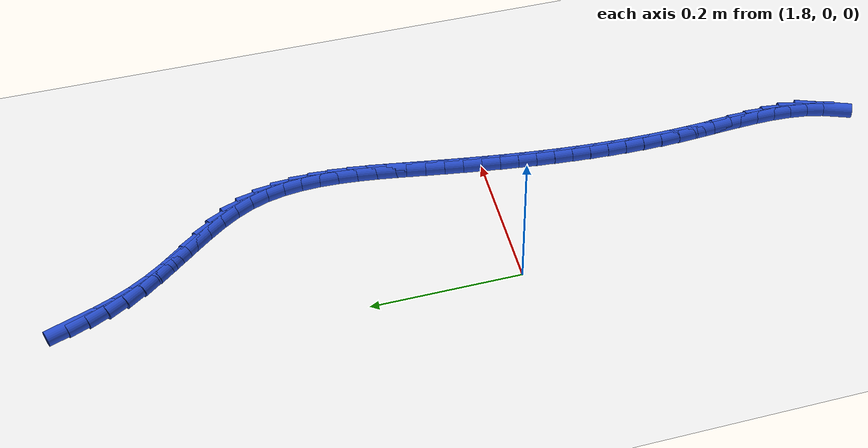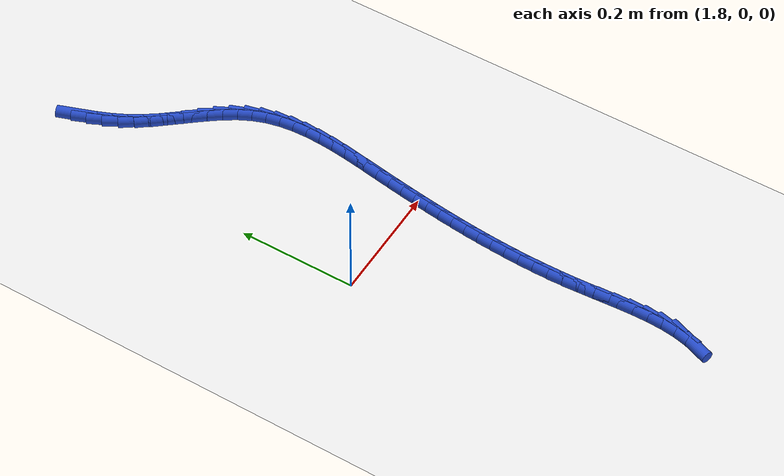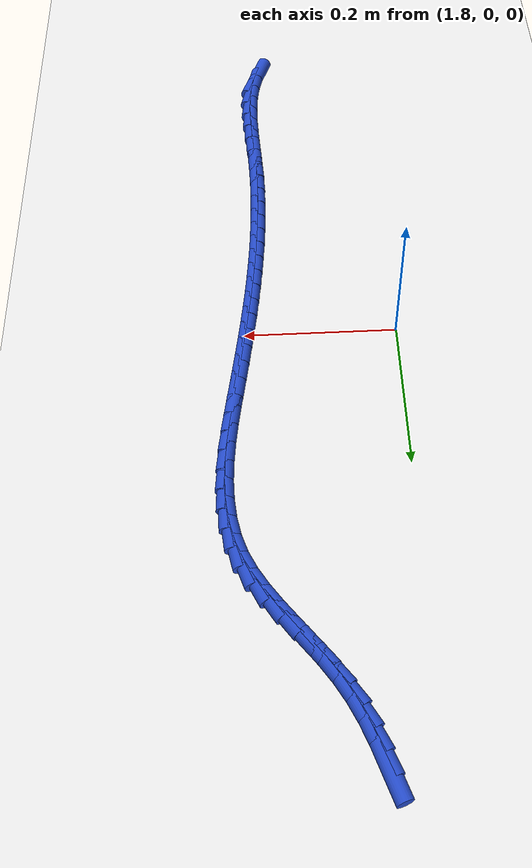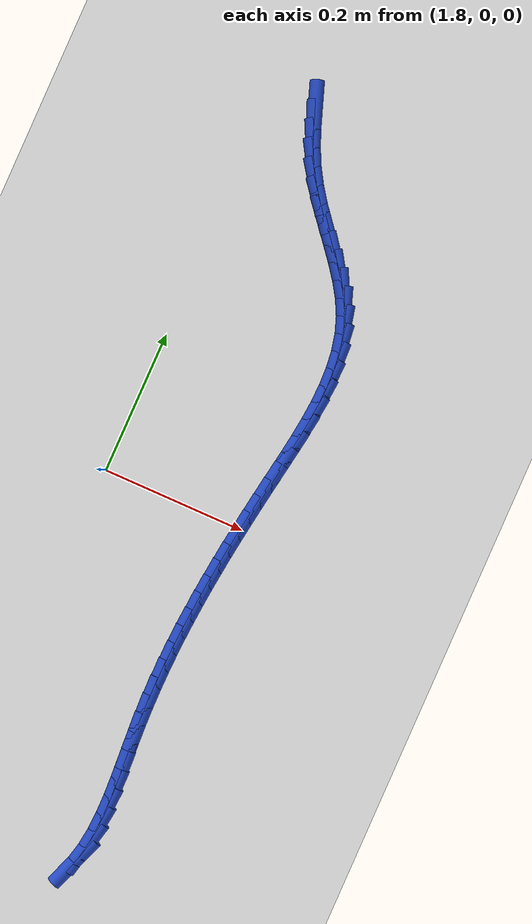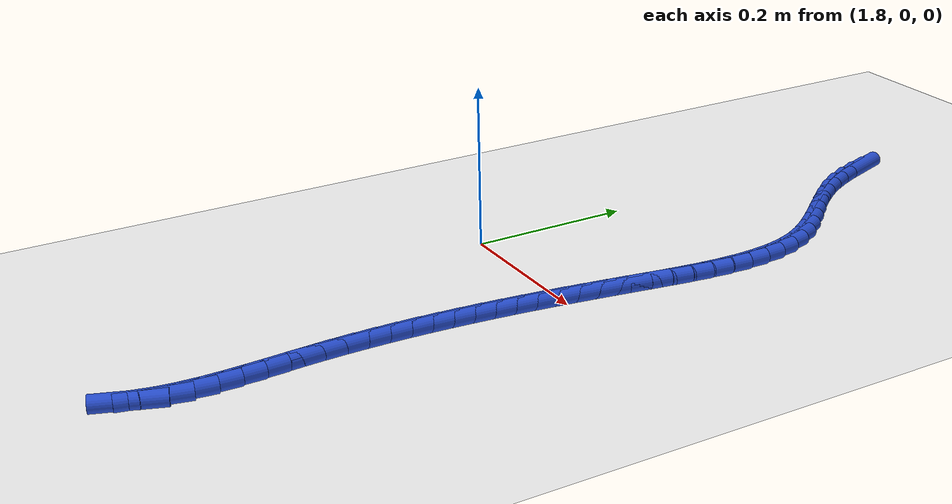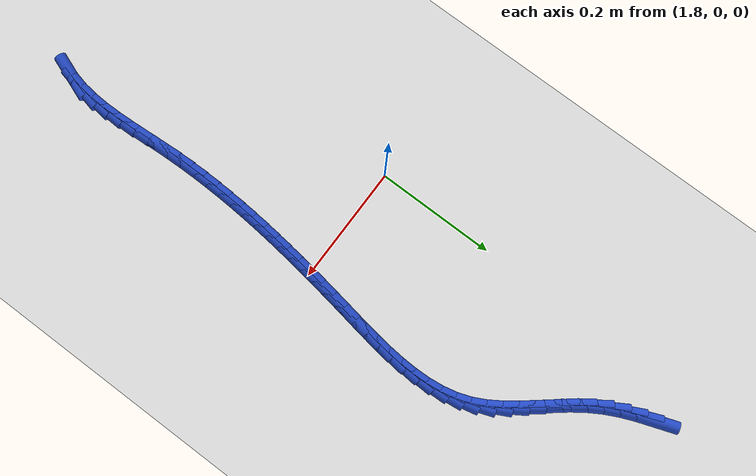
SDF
<sdf version="1.6">
 <world name="default">
  <model name="ground_plane">
   <static>1</static>
   <link name="link">
    <collision name="collision">
     <geometry><plane><normal>0 0 1</normal><size>100 100</size></plane></geometry>
     <surface><friction><ode><mu>100</mu><mu2>50</mu2></ode></friction></surface>
    </collision>
    <visual name="visual">
     <cast_shadows>0</cast_shadows>
     <geometry><plane><normal>0 0 1</normal><size>100 100</size></plane></geometry>
     <material>
      <script><uri>file://media/materials/scripts/gazebo.material</uri><name>Gazebo/WhiteGlow</name></script>
     </material>
    </visual>
   </link>
  </model>
  <model name="line">
   <link name="link_107">
    <pose>1.8610962574442174 0.5542852557770672 0.01 0 1.57 -1.2293249356853417</pose>
    <collision name="collision">
     <geometry><cylinder><radius>0.01</radius><length>0.08</length></cylinder></geometry>
    </collision>
    <visual name="visual">
     <material>
      <script><name>Gazebo/Blue</name><uri>file://media/materials/scripts/gazebo.material</uri></script>
     </material>
     <geometry><cylinder><radius>0.01</radius><length>0.08</length></cylinder></geometry>
    </visual>
   </link>
   <link name="link_108">
    <pose>1.8696359012854007 0.5302565385575835 0.01 0 1.57 -1.177512305773582</pose>
    <collision name="collision">
     <geometry><cylinder><radius>0.01</radius><length>0.08</length></cylinder></geometry>
    </collision>
    <visual name="visual">
     <material>
      <script><name>Gazebo/Blue</name><uri>file://media/materials/scripts/gazebo.material</uri></script>
     </material>
     <geometry><cylinder><radius>0.01</radius><length>0.08</length></cylinder></geometry>
    </visual>
   </link>
   <link name="link_109">
    <pose>1.8793738081867253 0.5067859921014853 0.01 0 1.57 -1.109574946873668</pose>
    <collision name="collision">
     <geometry><cylinder><radius>0.01</radius><length>0.08</length></cylinder></geometry>
    </collision>
    <visual name="visual">
     <material>
      <script><name>Gazebo/Blue</name><uri>file://media/materials/scripts/gazebo.material</uri></script>
     </material>
     <geometry><cylinder><radius>0.01</radius><length>0.08</length></cylinder></geometry>
    </visual>
   </link>
   <link name="link_110">
    <pose>1.8906725779312867 0.4840507169670536 0.01 0 1.57 -1.0266306603056614</pose>
    <collision name="collision">
     <geometry><cylinder><radius>0.01</radius><length>0.08</length></cylinder></geometry>
    </collision>
    <visual name="visual">
     <material>
      <script><name>Gazebo/Blue</name><uri>file://media/materials/scripts/gazebo.material</uri></script>
     </material>
     <geometry><cylinder><radius>0.01</radius><length>0.08</length></cylinder></geometry>
    </visual>
   </link>
   <link name="link_111">
    <pose>1.903881331934188 0.4622219006431325 0.01 0 1.57 -0.9492755823621613</pose>
    <collision name="collision">
     <geometry><cylinder><radius>0.01</radius><length>0.08</length></cylinder></geometry>
    </collision>
    <visual name="visual">
     <material>
      <script><name>Gazebo/Blue</name><uri>file://media/materials/scripts/gazebo.material</uri></script>
     </material>
     <geometry><cylinder><radius>0.01</radius><length>0.08</length></cylinder></geometry>
    </visual>
   </link>
   <link name="link_112">
    <pose>1.9188882898765236 0.441268529286868 0.01 0 1.57 -0.9007615337390162</pose>
    <collision name="collision">
     <geometry><cylinder><radius>0.01</radius><length>0.08</length></cylinder></geometry>
    </collision>
    <visual name="visual">
     <material>
      <script><name>Gazebo/Blue</name><uri>file://media/materials/scripts/gazebo.material</uri></script>
     </material>
     <geometry><cylinder><radius>0.01</radius><length>0.08</length></cylinder></geometry>
    </visual>
   </link>
   <link name="link_113">
    <pose>1.9350170716073867 0.42091189452643635 0.01 0 1.57 -0.8811325712753304</pose>
    <collision name="collision">
     <geometry><cylinder><radius>0.01</radius><length>0.08</length></cylinder></geometry>
    </collision>
    <visual name="visual">
     <material>
      <script><name>Gazebo/Blue</name><uri>file://media/materials/scripts/gazebo.material</uri></script>
     </material>
     <geometry><cylinder><radius>0.01</radius><length>0.08</length></cylinder></geometry>
    </visual>
   </link>
   <link name="link_114">
    <pose>1.9515568108831154 0.4008581586612102 0.01 0 1.57 -0.8898777325078531</pose>
    <collision name="collision">
     <geometry><cylinder><radius>0.01</radius><length>0.08</length></cylinder></geometry>
    </collision>
    <visual name="visual">
     <material>
      <script><name>Gazebo/Blue</name><uri>file://media/materials/scripts/gazebo.material</uri></script>
     </material>
     <geometry><cylinder><radius>0.01</radius><length>0.08</length></cylinder></geometry>
    </visual>
   </link>
   <link name="link_115">
    <pose>1.9677966414600472 0.3808134839905617 0.01 0 1.57 -0.9278631562762352</pose>
    <collision name="collision">
     <geometry><cylinder><radius>0.01</radius><length>0.08</length></cylinder></geometry>
    </collision>
    <visual name="visual">
     <material>
      <script><name>Gazebo/Blue</name><uri>file://media/materials/scripts/gazebo.material</uri></script>
     </material>
     <geometry><cylinder><radius>0.01</radius><length>0.08</length></cylinder></geometry>
    </visual>
   </link>
   <link name="link_116">
    <pose>1.9830256970945204 0.36048403281386404 0.01 0 1.57 -0.9972110603066092</pose>
    <collision name="collision">
     <geometry><cylinder><radius>0.01</radius><length>0.08</length></cylinder></geometry>
    </collision>
    <visual name="visual">
     <material>
      <script><name>Gazebo/Blue</name><uri>file://media/materials/scripts/gazebo.material</uri></script>
     </material>
     <geometry><cylinder><radius>0.01</radius><length>0.08</length></cylinder></geometry>
    </visual>
   </link>
   <link name="link_117">
    <pose>1.996533111542873 0.3395759674304895 0.01 0 1.57 -1.100389580745206</pose>
    <collision name="collision">
     <geometry><cylinder><radius>0.01</radius><length>0.08</length></cylinder></geometry>
    </collision>
    <visual name="visual">
     <material>
      <script><name>Gazebo/Blue</name><uri>file://media/materials/scripts/gazebo.material</uri></script>
     </material>
     <geometry><cylinder><radius>0.01</radius><length>0.08</length></cylinder></geometry>
    </visual>
   </link>
   <link name="link_118">
    <pose>2.0076080188476797 0.31779545026214256 0.01 0 1.57 -1.2298100016684865</pose>
    <collision name="collision">
     <geometry><cylinder><radius>0.01</radius><length>0.08</length></cylinder></geometry>
    </collision>
    <visual name="visual">
     <material>
      <script><name>Gazebo/Blue</name><uri>file://media/materials/scripts/gazebo.material</uri></script>
     </material>
     <geometry><cylinder><radius>0.01</radius><length>0.08</length></cylinder></geometry>
    </visual>
   </link>
   <link name="link_119">
    <pose>2.0157228296688134 0.294926972850751 0.01 0 1.57 -1.3509083829112822</pose>
    <collision name="collision">
     <geometry><cylinder><radius>0.01</radius><length>0.08</length></cylinder></geometry>
    </collision>
    <visual name="visual">
     <material>
      <script><name>Gazebo/Blue</name><uri>file://media/materials/scripts/gazebo.material</uri></script>
     </material>
     <geometry><cylinder><radius>0.01</radius><length>0.08</length></cylinder></geometry>
    </visual>
   </link>
   <link name="link_120">
    <pose>2.0210576981846926 0.2710575035515282 0.01 0 1.57 -1.4537364040141276</pose>
    <collision name="collision">
     <geometry><cylinder><radius>0.01</radius><length>0.08</length></cylinder></geometry>
    </collision>
    <visual name="visual">
     <material>
      <script><name>Gazebo/Blue</name><uri>file://media/materials/scripts/gazebo.material</uri></script>
     </material>
     <geometry><cylinder><radius>0.01</radius><length>0.08</length></cylinder></geometry>
    </visual>
   </link>
   <link name="link_121">
    <pose>2.0239635916041685 0.24634701312770677 0.01 0 1.57 -1.538203095894344</pose>
    <collision name="collision">
     <geometry><cylinder><radius>0.01</radius><length>0.08</length></cylinder></geometry>
    </collision>
    <visual name="visual">
     <material>
      <script><name>Gazebo/Blue</name><uri>file://media/materials/scripts/gazebo.material</uri></script>
     </material>
     <geometry><cylinder><radius>0.01</radius><length>0.08</length></cylinder></geometry>
    </visual>
   </link>
   <link name="link_122">
    <pose>2.0247914771360924 0.22095547234251928 0.01 0 1.57 1.5361107366724638</pose>
    <collision name="collision">
     <geometry><cylinder><radius>0.01</radius><length>0.08</length></cylinder></geometry>
    </collision>
    <visual name="visual">
     <material>
      <script><name>Gazebo/Blue</name><uri>file://media/materials/scripts/gazebo.material</uri></script>
     </material>
     <geometry><cylinder><radius>0.01</radius><length>0.08</length></cylinder></geometry>
    </visual>
   </link>
   <link name="link_123">
    <pose>2.0238923219893166 0.19504285195919785 0.01 0 1.57 1.484414728843293</pose>
    <collision name="collision">
     <geometry><cylinder><radius>0.01</radius><length>0.08</length></cylinder></geometry>
    </collision>
    <visual name="visual">
     <material>
      <script><name>Gazebo/Blue</name><uri>file://media/materials/scripts/gazebo.material</uri></script>
     </material>
     <geometry><cylinder><radius>0.01</radius><length>0.08</length></cylinder></geometry>
    </visual>
   </link>
   <link name="link_124">
    <pose>2.021617093372692 0.16876912274097586 0.01 0 1.57 1.4467769366652745</pose>
    <collision name="collision">
     <geometry><cylinder><radius>0.01</radius><length>0.08</length></cylinder></geometry>
    </collision>
    <visual name="visual">
     <material>
      <script><name>Gazebo/Blue</name><uri>file://media/materials/scripts/gazebo.material</uri></script>
     </material>
     <geometry><cylinder><radius>0.01</radius><length>0.08</length></cylinder></geometry>
    </visual>
   </link>
   <link name="link_125">
    <pose>2.0183167584950703 0.14229425545108546 0.01 0 1.57 1.4220144950651614</pose>
    <collision name="collision">
     <geometry><cylinder><radius>0.01</radius><length>0.08</length></cylinder></geometry>
    </collision>
    <visual name="visual">
     <material>
      <script><name>Gazebo/Blue</name><uri>file://media/materials/scripts/gazebo.material</uri></script>
     </material>
     <geometry><cylinder><radius>0.01</radius><length>0.08</length></cylinder></geometry>
    </visual>
   </link>
   <link name="link_126">
    <pose>2.014342284565303 0.11577822085275881 0.01 0 1.57 1.4094056389707181</pose>
    <collision name="collision">
     <geometry><cylinder><radius>0.01</radius><length>0.08</length></cylinder></geometry>
    </collision>
    <visual name="visual">
     <material>
      <script><name>Gazebo/Blue</name><uri>file://media/materials/scripts/gazebo.material</uri></script>
     </material>
     <geometry><cylinder><radius>0.01</radius><length>0.08</length></cylinder></geometry>
    </visual>
   </link>
   <link name="link_127">
    <pose>2.010044638792242 0.08938098970922927 0.01 0 1.57 1.4084013049644941</pose>
    <collision name="collision">
     <geometry><cylinder><radius>0.01</radius><length>0.08</length></cylinder></geometry>
    </collision>
    <visual name="visual">
     <material>
      <script><name>Gazebo/Blue</name><uri>file://media/materials/scripts/gazebo.material</uri></script>
     </material>
     <geometry><cylinder><radius>0.01</radius><length>0.08</length></cylinder></geometry>
    </visual>
   </link>
   <link name="link_128">
    <pose>2.0057643613279277 0.06325590040431141 0.01 0 1.57 1.4134990775991132</pose>
    <collision name="collision">
     <geometry><cylinder><radius>0.01</radius><length>0.08</length></cylinder></geometry>
    </collision>
    <visual name="visual">
     <material>
      <script><name>Gazebo/Blue</name><uri>file://media/materials/scripts/gazebo.material</uri></script>
     </material>
     <geometry><cylinder><radius>0.01</radius><length>0.08</length></cylinder></geometry>
    </visual>
   </link>
   <link name="link_129">
    <pose>2.001670954647219 0.03744749870753733 0.01 0 1.57 1.4201292096819973</pose>
    <collision name="collision">
     <geometry><cylinder><radius>0.01</radius><length>0.08</length></cylinder></geometry>
    </collision>
    <visual name="visual">
     <material>
      <script><name>Gazebo/Blue</name><uri>file://media/materials/scripts/gazebo.material</uri></script>
     </material>
     <geometry><cylinder><radius>0.01</radius><length>0.08</length></cylinder></geometry>
    </visual>
   </link>
   <link name="link_130">
    <pose>1.9977941259004737 0.011911410221446619 0.01 0 1.57 1.4281706600501718</pose>
    <collision name="collision">
     <geometry><cylinder><radius>0.01</radius><length>0.08</length></cylinder></geometry>
    </collision>
    <visual name="visual">
     <material>
      <script><name>Gazebo/Blue</name><uri>file://media/materials/scripts/gazebo.material</uri></script>
     </material>
     <geometry><cylinder><radius>0.01</radius><length>0.08</length></cylinder></geometry>
    </visual>
   </link>
   <link name="link_131">
    <pose>1.9941594834511425 -0.013399346583082103 0.01 0 1.57 1.4376248017449251</pose>
    <collision name="collision">
     <geometry><cylinder><radius>0.01</radius><length>0.08</length></cylinder></geometry>
    </collision>
    <visual name="visual">
     <material>
      <script><name>Gazebo/Blue</name><uri>file://media/materials/scripts/gazebo.material</uri></script>
     </material>
     <geometry><cylinder><radius>0.01</radius><length>0.08</length></cylinder></geometry>
    </visual>
   </link>
   <link name="link_132">
    <pose>1.9907926356626706 -0.03853175323517019 0.01 0 1.57 1.448477356391922</pose>
    <collision name="collision">
     <geometry><cylinder><radius>0.01</radius><length>0.08</length></cylinder></geometry>
    </collision>
    <visual name="visual">
     <material>
      <script><name>Gazebo/Blue</name><uri>file://media/materials/scripts/gazebo.material</uri></script>
     </material>
     <geometry><cylinder><radius>0.01</radius><length>0.08</length></cylinder></geometry>
    </visual>
   </link>
   <link name="link_133">
    <pose>1.987719190898507 -0.06353279126393982 0.01 0 1.57 1.4606974674595836</pose>
    <collision name="collision">
     <geometry><cylinder><radius>0.01</radius><length>0.08</length></cylinder></geometry>
    </collision>
    <visual name="visual">
     <material>
      <script><name>Gazebo/Blue</name><uri>file://media/materials/scripts/gazebo.material</uri></script>
     </material>
     <geometry><cylinder><radius>0.01</radius><length>0.08</length></cylinder></geometry>
    </visual>
   </link>
   <link name="link_134">
    <pose>1.9849647575220992 -0.08844944219851085 0.01 0 1.57 1.4742371470339517</pose>
    <collision name="collision">
     <geometry><cylinder><radius>0.01</radius><length>0.08</length></cylinder></geometry>
    </collision>
    <visual name="visual">
     <material>
      <script><name>Gazebo/Blue</name><uri>file://media/materials/scripts/gazebo.material</uri></script>
     </material>
     <geometry><cylinder><radius>0.01</radius><length>0.08</length></cylinder></geometry>
    </visual>
   </link>
   <link name="link_135">
    <pose>1.9825549438968968 -0.11332868756800547 0.01 0 1.57 1.489031175577503</pose>
    <collision name="collision">
     <geometry><cylinder><radius>0.01</radius><length>0.08</length></cylinder></geometry>
    </collision>
    <visual name="visual">
     <material>
      <script><name>Gazebo/Blue</name><uri>file://media/materials/scripts/gazebo.material</uri></script>
     </material>
     <geometry><cylinder><radius>0.01</radius><length>0.08</length></cylinder></geometry>
    </visual>
   </link>
   <link name="link_136">
    <pose>1.9805153583863462 -0.13821750890154505 0.01 0 1.57 1.5049975203538328</pose>
    <collision name="collision">
     <geometry><cylinder><radius>0.01</radius><length>0.08</length></cylinder></geometry>
    </collision>
    <visual name="visual">
     <material>
      <script><name>Gazebo/Blue</name><uri>file://media/materials/scripts/gazebo.material</uri></script>
     </material>
     <geometry><cylinder><radius>0.01</radius><length>0.08</length></cylinder></geometry>
    </visual>
   </link>
   <link name="link_137">
    <pose>1.978871609353896 -0.163162887728251 0.01 0 1.57 1.5220383152779557</pose>
    <collision name="collision">
     <geometry><cylinder><radius>0.01</radius><length>0.08</length></cylinder></geometry>
    </collision>
    <visual name="visual">
     <material>
      <script><name>Gazebo/Blue</name><uri>file://media/materials/scripts/gazebo.material</uri></script>
     </material>
     <geometry><cylinder><radius>0.01</radius><length>0.08</length></cylinder></geometry>
    </visual>
   </link>
   <link name="link_138">
    <pose>1.9776493051629942 -0.1882118055772447 0.01 0 1.57 1.5400414135041431</pose>
    <collision name="collision">
     <geometry><cylinder><radius>0.01</radius><length>0.08</length></cylinder></geometry>
    </collision>
    <visual name="visual">
     <material>
      <script><name>Gazebo/Blue</name><uri>file://media/materials/scripts/gazebo.material</uri></script>
     </material>
     <geometry><cylinder><radius>0.01</radius><length>0.08</length></cylinder></geometry>
    </visual>
   </link>
   <link name="link_139">
    <pose>1.9768740541770882 -0.2134112439776475 0.01 0 1.57 1.558882486185605</pose>
    <collision name="collision">
     <geometry><cylinder><radius>0.01</radius><length>0.08</length></cylinder></geometry>
    </collision>
    <visual name="visual">
     <material>
      <script><name>Gazebo/Blue</name><uri>file://media/materials/scripts/gazebo.material</uri></script>
     </material>
     <geometry><cylinder><radius>0.01</radius><length>0.08</length></cylinder></geometry>
    </visual>
   </link>
   <link name="link_140">
    <pose>1.9765714647596258 -0.23880818445858143 0.01 0 1.57 -1.563165053463388</pose>
    <collision name="collision">
     <geometry><cylinder><radius>0.01</radius><length>0.08</length></cylinder></geometry>
    </collision>
    <visual name="visual">
     <material>
      <script><name>Gazebo/Blue</name><uri>file://media/materials/scripts/gazebo.material</uri></script>
     </material>
     <geometry><cylinder><radius>0.01</radius><length>0.08</length></cylinder></geometry>
    </visual>
   </link>
   <link name="link_141">
    <pose>1.9767671452740567 -0.26444960854916666 0.01 0 1.57 -1.5430564854146152</pose>
    <collision name="collision">
     <geometry><cylinder><radius>0.01</radius><length>0.08</length></cylinder></geometry>
    </collision>
    <visual name="visual">
     <material>
      <script><name>Gazebo/Blue</name><uri>file://media/materials/scripts/gazebo.material</uri></script>
     </material>
     <geometry><cylinder><radius>0.01</radius><length>0.08</length></cylinder></geometry>
    </visual>
   </link>
   <link name="link_142">
    <pose>1.9774867040838273 -0.2903824977785251 0.01 0 1.57 -1.5225600470831002</pose>
    <collision name="collision">
     <geometry><cylinder><radius>0.01</radius><length>0.08</length></cylinder></geometry>
    </collision>
    <visual name="visual">
     <material>
      <script><name>Gazebo/Blue</name><uri>file://media/materials/scripts/gazebo.material</uri></script>
     </material>
     <geometry><cylinder><radius>0.01</radius><length>0.08</length></cylinder></geometry>
    </visual>
   </link>
   <link name="link_143">
    <pose>1.9787548961284083 -0.3166533527391661 0.01 0 1.57 -1.5071302674457088</pose>
    <collision name="collision">
     <geometry><cylinder><radius>0.01</radius><length>0.08</length></cylinder></geometry>
    </collision>
    <visual name="visual">
     <material>
      <script><name>Gazebo/Blue</name><uri>file://media/materials/scripts/gazebo.material</uri></script>
     </material>
     <geometry><cylinder><radius>0.01</radius><length>0.08</length></cylinder></geometry>
    </visual>
   </link>
   <link name="link_144">
    <pose>1.9804489312046398 -0.3432255267686957 0.01 0 1.57 -1.5077531947188172</pose>
    <collision name="collision">
     <geometry><cylinder><radius>0.01</radius><length>0.08</length></cylinder></geometry>
    </collision>
    <visual name="visual">
     <material>
      <script><name>Gazebo/Blue</name><uri>file://media/materials/scripts/gazebo.material</uri></script>
     </material>
     <geometry><cylinder><radius>0.01</radius><length>0.08</length></cylinder></geometry>
    </visual>
   </link>
   <link name="link_145">
    <pose>1.9821318797541576 -0.36988534382525723 0.01 0 1.57 -1.5257638980192638</pose>
    <collision name="collision">
     <geometry><cylinder><radius>0.01</radius><length>0.08</length></cylinder></geometry>
    </collision>
    <visual name="visual">
     <material>
      <script><name>Gazebo/Blue</name><uri>file://media/materials/scripts/gazebo.material</uri></script>
     </material>
     <geometry><cylinder><radius>0.01</radius><length>0.08</length></cylinder></geometry>
    </visual>
   </link>
   <link name="link_146">
    <pose>1.9833265463191976 -0.3963964365134078 0.01 0 1.57 -1.5620240985240383</pose>
    <collision name="collision">
     <geometry><cylinder><radius>0.01</radius><length>0.08</length></cylinder></geometry>
    </collision>
    <visual name="visual">
     <material>
      <script><name>Gazebo/Blue</name><uri>file://media/materials/scripts/gazebo.material</uri></script>
     </material>
     <geometry><cylinder><radius>0.01</radius><length>0.08</length></cylinder></geometry>
    </visual>
   </link>
   <link name="link_147">
    <pose>1.9835557354419933 -0.4225224374377042 0.01 0 1.57 1.5232530560264586</pose>
    <collision name="collision">
     <geometry><cylinder><radius>0.01</radius><length>0.08</length></cylinder></geometry>
    </collision>
    <visual name="visual">
     <material>
      <script><name>Gazebo/Blue</name><uri>file://media/materials/scripts/gazebo.material</uri></script>
     </material>
     <geometry><cylinder><radius>0.01</radius><length>0.08</length></cylinder></geometry>
    </visual>
   </link>
   <link name="link_148">
    <pose>1.9823422516647813 -0.4480269792027037 0.01 0 1.57 1.4443440460880896</pose>
    <collision name="collision">
     <geometry><cylinder><radius>0.01</radius><length>0.08</length></cylinder></geometry>
    </collision>
    <visual name="visual">
     <material>
      <script><name>Gazebo/Blue</name><uri>file://media/materials/scripts/gazebo.material</uri></script>
     </material>
     <geometry><cylinder><radius>0.01</radius><length>0.08</length></cylinder></geometry>
    </visual>
   </link>
   <link name="link_149">
    <pose>1.979208899529795 -0.47267369441296375 0.01 0 1.57 1.3401624814511433</pose>
    <collision name="collision">
     <geometry><cylinder><radius>0.01</radius><length>0.08</length></cylinder></geometry>
    </collision>
    <visual name="visual">
     <material>
      <script><name>Gazebo/Blue</name><uri>file://media/materials/scripts/gazebo.material</uri></script>
     </material>
     <geometry><cylinder><radius>0.01</radius><length>0.08</length></cylinder></geometry>
    </visual>
   </link>
   <link name="link_150">
    <pose>1.973678483579271 -0.49622621567304015 0.01 0 1.57 1.2093538960054984</pose>
    <collision name="collision">
     <geometry><cylinder><radius>0.01</radius><length>0.08</length></cylinder></geometry>
    </collision>
    <visual name="visual">
     <material>
      <script><name>Gazebo/Blue</name><uri>file://media/materials/scripts/gazebo.material</uri></script>
     </material>
     <geometry><cylinder><radius>0.01</radius><length>0.08</length></cylinder></geometry>
    </visual>
   </link>
  </model>
 </world>
</sdf>
